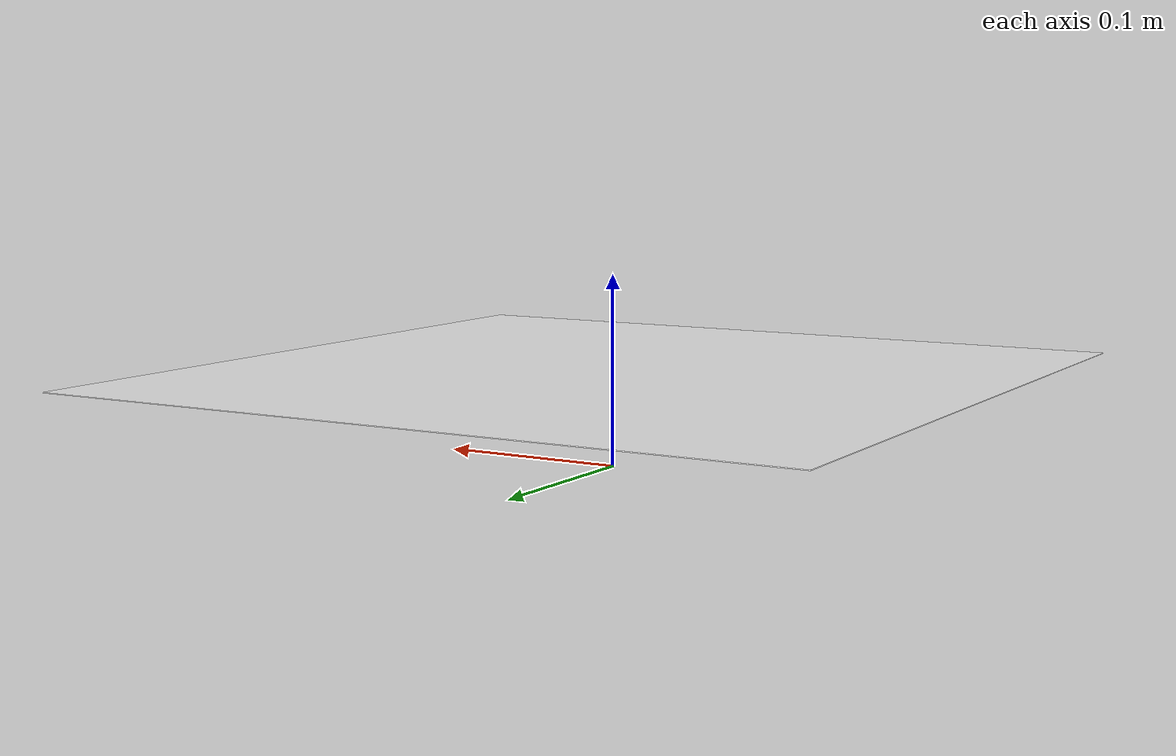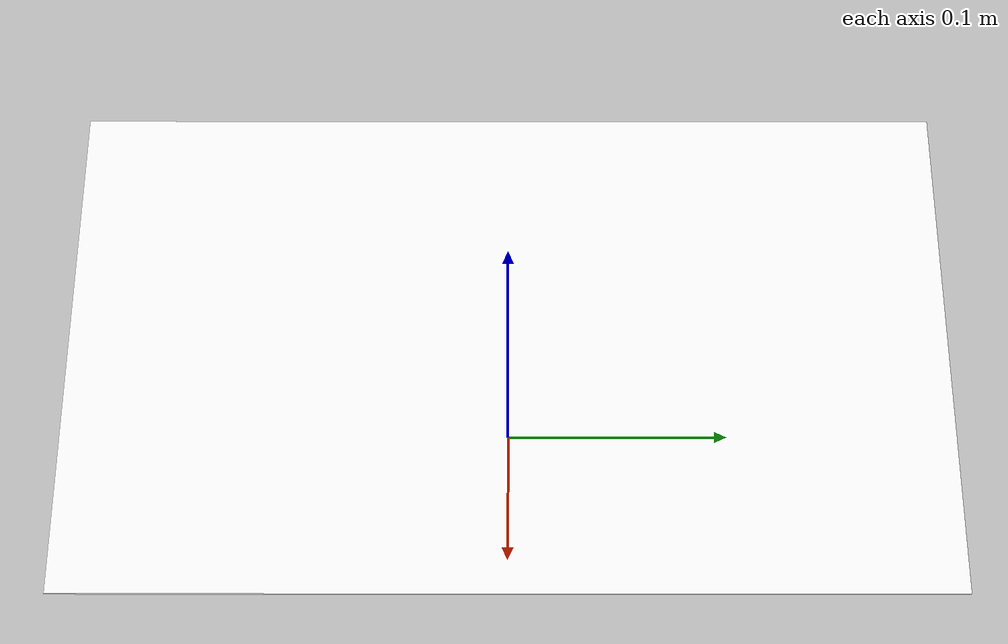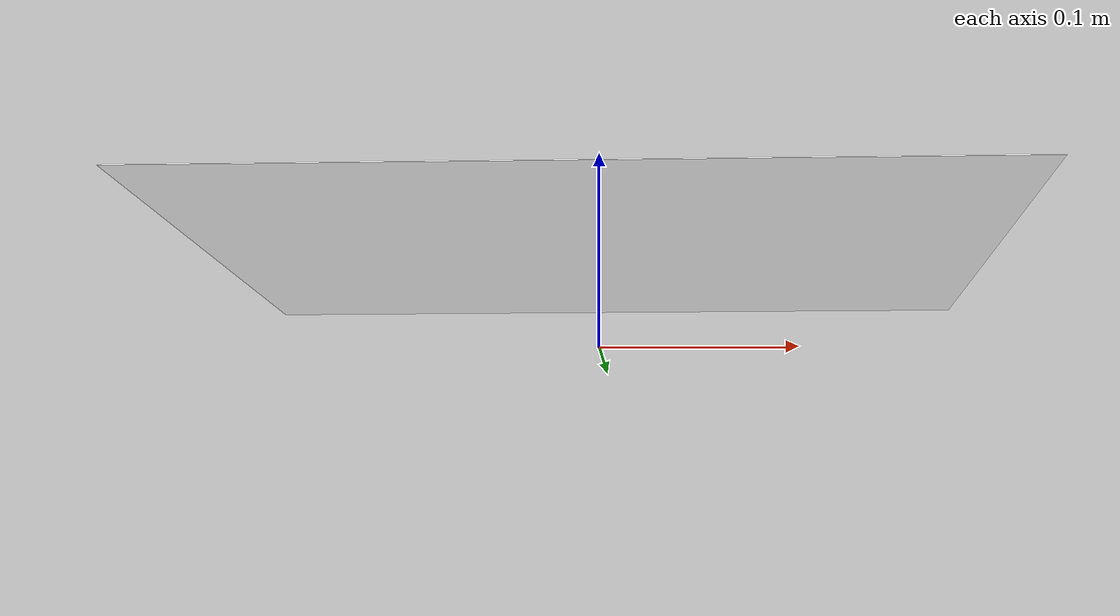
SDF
<?xml version="1.0"?>
<sdf version="1.9">
  <model name="land_zone">
    <static>true</static>

    <link name="link">

      <visual name="image_visual">
        <pose>0 0 0.05 0 0 0</pose>

        <geometry>
          <plane>
            <normal>0 0 1</normal>
            <size>0.4 0.4</size>
          </plane>
        </geometry>

        <material>
          <ambient>1 1 1 1</ambient>
          <diffuse>1 1 1 1</diffuse>

          <pbr>
            <metal>
              <albedo_map>model://land_zone/materials/textures/landzone.jpg</albedo_map>
              <roughness>1.0</roughness>
              <metalness>0.0</metalness>
            </metal>
          </pbr>
        </material>
      </visual>

    </link>
  </model>
</sdf>
